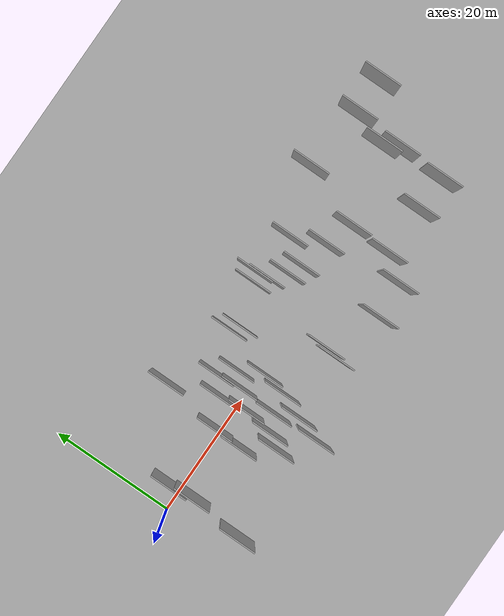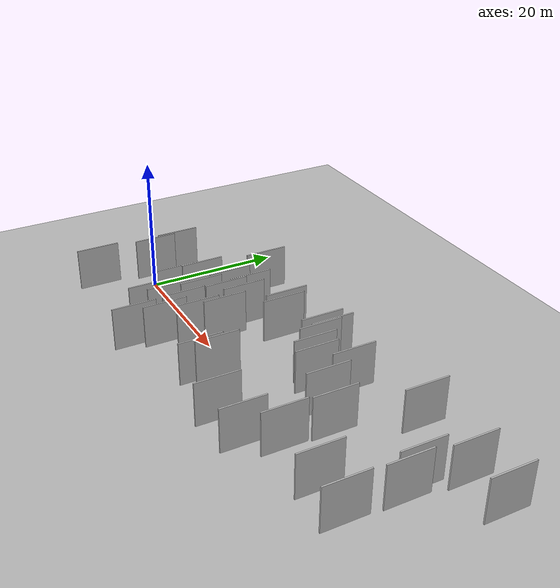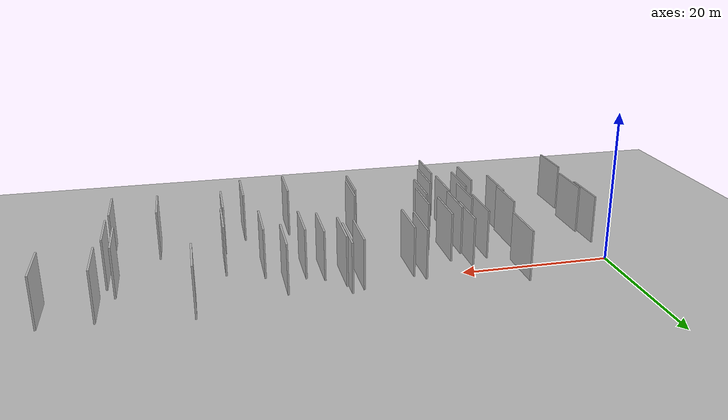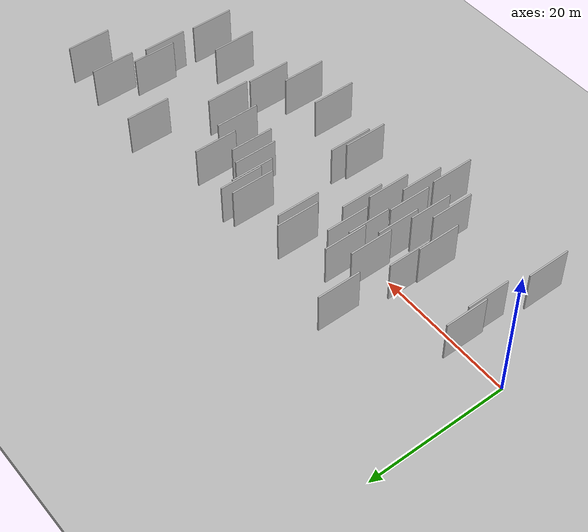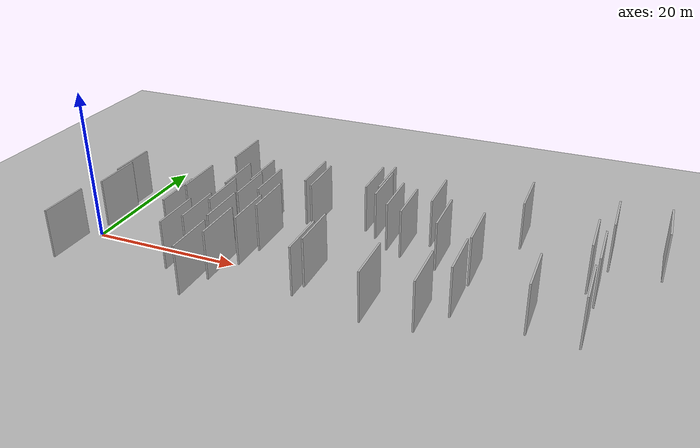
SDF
<?xml version="1.0" encoding="utf-8"?>

<sdf version="1.6">

   <world name="default">

      <gui fullscreen="0">

         <camera name="user_camera">

            <pose>-15 0 4.57585 0 0 0</pose>

            <view_controller>orbit</view_controller>

         </camera>

      </gui>

      <scene>

         <sky>

           <clouds>

             <speed>12</speed>

           </clouds>

         </sky>

         <ambient>0.4 0.4 0.4 1</ambient>

         <background>0.7 0.7 0.7 1</background>

         <shadows>1</shadows>

      </scene>

      <gravity>0 0 -9.8066</gravity>

      <magnetic_field>6e-06 2.3e-05 -4.2e-05</magnetic_field>

      <physics default="0" name="default_physics" type="ode">

         <ode>

            <solver>

               <type>quick</type>

               <iters>10</iters>

               <sor>1.0</sor>

               <use_dynamic_moi_rescaling>0</use_dynamic_moi_rescaling>

            </solver>

            <constraints>

               <cfm>0</cfm>

               <erp>0.2</erp>

               <contact_max_correcting_vel>100</contact_max_correcting_vel>

               <contact_surface_layer>0.001</contact_surface_layer>

            </constraints>

         </ode>

         <max_step_size>0.004</max_step_size>

         <real_time_factor>1</real_time_factor>

         <real_time_update_rate>250</real_time_update_rate>

      </physics>

      <light name="sun" type="directional">

         <cast_shadows>1</cast_shadows>

         <pose>0 0 10 0 0 0</pose>

         <diffuse>0.8 0.8 0.8 1</diffuse>

         <specular>0.2 0.2 0.2 1</specular>

         <attenuation>

            <range>1000</range>

            <constant>0.9</constant>

            <linear>0.01</linear>

            <quadratic>0.001</quadratic>

         </attenuation>

         <direction>-0.5 0.1 -0.9</direction>

      </light>

      <include>

         <name>ground_plane_1</name>

         <uri>model://HANNAS_ground_plane</uri>

         <pose>0 0 0  0 0 0</pose>

      </include>

      <include>

         <name>ground_plane_2</name>

         <uri>model://HANNAS_ground_plane</uri>

         <pose>100 0 0  0 0 0</pose>

      </include>

      <model name="HANNAS_wall_1">

         <static>1</static>

         <pose frame="">15.1098 -2.8193 5.0 0.000000 0.000000 1.570796</pose>

         <link name="link">

            <pose frame="">0 0 3.00 0 0 0</pose>

            <collision name="collision">

               <geometry>

                  <box>

                     <size>6.00 0.2 6.00</size>

                  </box>

               </geometry>

               <max_contacts>10</max_contacts>

               <surface>

                  <contact>

                     <ode/>

                  </contact>

                  <bounce/>

                  <friction>

                     <torsional>

                        <ode/>

                     </torsional>

                     <ode/>

                  </friction>

               </surface>

            </collision>

            <visual name="visual">

               <cast_shadows>0</cast_shadows>

               <geometry>

                  <box>

                     <size>6.00 0.2 6.00</size>

                  </box>

               </geometry>

               <material>

                  <script>

                     <uri>model://HANNAS_wall/materials/scripts</uri>

                     <uri>model://HANNAS_wall/materials/textures</uri>

                     <name>vrc/HANNAS_wall</name>

                  </script>

               </material>

            </visual>

            <self_collide>0</self_collide>

            <enable_wind>0</enable_wind>

            <kinematic>0</kinematic>

         </link>

      </model>

      <model name="HANNAS_wall_2">

         <static>1</static>

         <pose frame="">36.8971 9.5038 5.0 0.000000 0.000000 1.570796</pose>

         <link name="link">

            <pose frame="">0 0 3.00 0 0 0</pose>

            <collision name="collision">

               <geometry>

                  <box>

                     <size>6.00 0.2 6.00</size>

                  </box>

               </geometry>

               <max_contacts>10</max_contacts>

               <surface>

                  <contact>

                     <ode/>

                  </contact>

                  <bounce/>

                  <friction>

                     <torsional>

                        <ode/>

                     </torsional>

                     <ode/>

                  </friction>

               </surface>

            </collision>

            <visual name="visual">

               <cast_shadows>0</cast_shadows>

               <geometry>

                  <box>

                     <size>6.00 0.2 6.00</size>

                  </box>

               </geometry>

               <material>

                  <script>

                     <uri>model://HANNAS_wall/materials/scripts</uri>

                     <uri>model://HANNAS_wall/materials/textures</uri>

                     <name>vrc/HANNAS_wall</name>

                  </script>

               </material>

            </visual>

            <self_collide>0</self_collide>

            <enable_wind>0</enable_wind>

            <kinematic>0</kinematic>

         </link>

      </model>

      <model name="HANNAS_wall_3">

         <static>1</static>

         <pose frame="">22.0688 1.8951 5.0 0.000000 0.000000 1.570796</pose>

         <link name="link">

            <pose frame="">0 0 3.00 0 0 0</pose>

            <collision name="collision">

               <geometry>

                  <box>

                     <size>6.00 0.2 6.00</size>

                  </box>

               </geometry>

               <max_contacts>10</max_contacts>

               <surface>

                  <contact>

                     <ode/>

                  </contact>

                  <bounce/>

                  <friction>

                     <torsional>

                        <ode/>

                     </torsional>

                     <ode/>

                  </friction>

               </surface>

            </collision>

            <visual name="visual">

               <cast_shadows>0</cast_shadows>

               <geometry>

                  <box>

                     <size>6.00 0.2 6.00</size>

                  </box>

               </geometry>

               <material>

                  <script>

                     <uri>model://HANNAS_wall/materials/scripts</uri>

                     <uri>model://HANNAS_wall/materials/textures</uri>

                     <name>vrc/HANNAS_wall</name>

                  </script>

               </material>

            </visual>

            <self_collide>0</self_collide>

            <enable_wind>0</enable_wind>

            <kinematic>0</kinematic>

         </link>

      </model>

      <model name="HANNAS_wall_4">

         <static>1</static>

         <pose frame="">69.5111 10.4103 5.0 0.000000 0.000000 1.570796</pose>

         <link name="link">

            <pose frame="">0 0 3.00 0 0 0</pose>

            <collision name="collision">

               <geometry>

                  <box>

                     <size>6.00 0.2 6.00</size>

                  </box>

               </geometry>

               <max_contacts>10</max_contacts>

               <surface>

                  <contact>

                     <ode/>

                  </contact>

                  <bounce/>

                  <friction>

                     <torsional>

                        <ode/>

                     </torsional>

                     <ode/>

                  </friction>

               </surface>

            </collision>

            <visual name="visual">

               <cast_shadows>0</cast_shadows>

               <geometry>

                  <box>

                     <size>6.00 0.2 6.00</size>

                  </box>

               </geometry>

               <material>

                  <script>

                     <uri>model://HANNAS_wall/materials/scripts</uri>

                     <uri>model://HANNAS_wall/materials/textures</uri>

                     <name>vrc/HANNAS_wall</name>

                  </script>

               </material>

            </visual>

            <self_collide>0</self_collide>

            <enable_wind>0</enable_wind>

            <kinematic>0</kinematic>

         </link>

      </model>

      <model name="HANNAS_wall_5">

         <static>1</static>

         <pose frame="">39.2973 5.6026 5.0 0.000000 0.000000 1.570796</pose>

         <link name="link">

            <pose frame="">0 0 3.00 0 0 0</pose>

            <collision name="collision">

               <geometry>

                  <box>

                     <size>6.00 0.2 6.00</size>

                  </box>

               </geometry>

               <max_contacts>10</max_contacts>

               <surface>

                  <contact>

                     <ode/>

                  </contact>

                  <bounce/>

                  <friction>

                     <torsional>

                        <ode/>

                     </torsional>

                     <ode/>

                  </friction>

               </surface>

            </collision>

            <visual name="visual">

               <cast_shadows>0</cast_shadows>

               <geometry>

                  <box>

                     <size>6.00 0.2 6.00</size>

                  </box>

               </geometry>

               <material>

                  <script>

                     <uri>model://HANNAS_wall/materials/scripts</uri>

                     <uri>model://HANNAS_wall/materials/textures</uri>

                     <name>vrc/HANNAS_wall</name>

                  </script>

               </material>

            </visual>

            <self_collide>0</self_collide>

            <enable_wind>0</enable_wind>

            <kinematic>0</kinematic>

         </link>

      </model>

      <model name="HANNAS_wall_6">

         <static>1</static>

         <pose frame="">63.8105 10.3635 5.0 0.000000 0.000000 1.570796</pose>

         <link name="link">

            <pose frame="">0 0 3.00 0 0 0</pose>

            <collision name="collision">

               <geometry>

                  <box>

                     <size>6.00 0.2 6.00</size>

                  </box>

               </geometry>

               <max_contacts>10</max_contacts>

               <surface>

                  <contact>

                     <ode/>

                  </contact>

                  <bounce/>

                  <friction>

                     <torsional>

                        <ode/>

                     </torsional>

                     <ode/>

                  </friction>

               </surface>

            </collision>

            <visual name="visual">

               <cast_shadows>0</cast_shadows>

               <geometry>

                  <box>

                     <size>6.00 0.2 6.00</size>

                  </box>

               </geometry>

               <material>

                  <script>

                     <uri>model://HANNAS_wall/materials/scripts</uri>

                     <uri>model://HANNAS_wall/materials/textures</uri>

                     <name>vrc/HANNAS_wall</name>

                  </script>

               </material>

            </visual>

            <self_collide>0</self_collide>

            <enable_wind>0</enable_wind>

            <kinematic>0</kinematic>

         </link>

      </model>

      <model name="HANNAS_wall_7">

         <static>1</static>

         <pose frame="">21.7948 5.6717 5.0 0.000000 0.000000 1.570796</pose>

         <link name="link">

            <pose frame="">0 0 3.00 0 0 0</pose>

            <collision name="collision">

               <geometry>

                  <box>

                     <size>6.00 0.2 6.00</size>

                  </box>

               </geometry>

               <max_contacts>10</max_contacts>

               <surface>

                  <contact>

                     <ode/>

                  </contact>

                  <bounce/>

                  <friction>

                     <torsional>

                        <ode/>

                     </torsional>

                     <ode/>

                  </friction>

               </surface>

            </collision>

            <visual name="visual">

               <cast_shadows>0</cast_shadows>

               <geometry>

                  <box>

                     <size>6.00 0.2 6.00</size>

                  </box>

               </geometry>

               <material>

                  <script>

                     <uri>model://HANNAS_wall/materials/scripts</uri>

                     <uri>model://HANNAS_wall/materials/textures</uri>

                     <name>vrc/HANNAS_wall</name>

                  </script>

               </material>

            </visual>

            <self_collide>0</self_collide>

            <enable_wind>0</enable_wind>

            <kinematic>0</kinematic>

         </link>

      </model>

      <model name="HANNAS_wall_8">

         <static>1</static>

         <pose frame="">29.2402 6.7850 5.0 0.000000 0.000000 1.570796</pose>

         <link name="link">

            <pose frame="">0 0 3.00 0 0 0</pose>

            <collision name="collision">

               <geometry>

                  <box>

                     <size>6.00 0.2 6.00</size>

                  </box>

               </geometry>

               <max_contacts>10</max_contacts>

               <surface>

                  <contact>

                     <ode/>

                  </contact>

                  <bounce/>

                  <friction>

                     <torsional>

                        <ode/>

                     </torsional>

                     <ode/>

                  </friction>

               </surface>

            </collision>

            <visual name="visual">

               <cast_shadows>0</cast_shadows>

               <geometry>

                  <box>

                     <size>6.00 0.2 6.00</size>

                  </box>

               </geometry>

               <material>

                  <script>

                     <uri>model://HANNAS_wall/materials/scripts</uri>

                     <uri>model://HANNAS_wall/materials/textures</uri>

                     <name>vrc/HANNAS_wall</name>

                  </script>

               </material>

            </visual>

            <self_collide>0</self_collide>

            <enable_wind>0</enable_wind>

            <kinematic>0</kinematic>

         </link>

      </model>

      <model name="HANNAS_wall_9">

         <static>1</static>

         <pose frame="">4.4301 -9.9603 5.0 0.000000 0.000000 1.570796</pose>

         <link name="link">

            <pose frame="">0 0 3.00 0 0 0</pose>

            <collision name="collision">

               <geometry>

                  <box>

                     <size>6.00 0.2 6.00</size>

                  </box>

               </geometry>

               <max_contacts>10</max_contacts>

               <surface>

                  <contact>

                     <ode/>

                  </contact>

                  <bounce/>

                  <friction>

                     <torsional>

                        <ode/>

                     </torsional>

                     <ode/>

                  </friction>

               </surface>

            </collision>

            <visual name="visual">

               <cast_shadows>0</cast_shadows>

               <geometry>

                  <box>

                     <size>6.00 0.2 6.00</size>

                  </box>

               </geometry>

               <material>

                  <script>

                     <uri>model://HANNAS_wall/materials/scripts</uri>

                     <uri>model://HANNAS_wall/materials/textures</uri>

                     <name>vrc/HANNAS_wall</name>

                  </script>

               </material>

            </visual>

            <self_collide>0</self_collide>

            <enable_wind>0</enable_wind>

            <kinematic>0</kinematic>

         </link>

      </model>

      <model name="HANNAS_wall_10">

         <static>1</static>

         <pose frame="">19.2642 -5.2666 5.0 0.000000 0.000000 1.570796</pose>

         <link name="link">

            <pose frame="">0 0 3.00 0 0 0</pose>

            <collision name="collision">

               <geometry>

                  <box>

                     <size>6.00 0.2 6.00</size>

                  </box>

               </geometry>

               <max_contacts>10</max_contacts>

               <surface>

                  <contact>

                     <ode/>

                  </contact>

                  <bounce/>

                  <friction>

                     <torsional>

                        <ode/>

                     </torsional>

                     <ode/>

                  </friction>

               </surface>

            </collision>

            <visual name="visual">

               <cast_shadows>0</cast_shadows>

               <geometry>

                  <box>

                     <size>6.00 0.2 6.00</size>

                  </box>

               </geometry>

               <material>

                  <script>

                     <uri>model://HANNAS_wall/materials/scripts</uri>

                     <uri>model://HANNAS_wall/materials/textures</uri>

                     <name>vrc/HANNAS_wall</name>

                  </script>

               </material>

            </visual>

            <self_collide>0</self_collide>

            <enable_wind>0</enable_wind>

            <kinematic>0</kinematic>

         </link>

      </model>

      <model name="HANNAS_wall_11">

         <static>1</static>

         <pose frame="">21.7826 -4.1473 5.0 0.000000 0.000000 1.570796</pose>

         <link name="link">

            <pose frame="">0 0 3.00 0 0 0</pose>

            <collision name="collision">

               <geometry>

                  <box>

                     <size>6.00 0.2 6.00</size>

                  </box>

               </geometry>

               <max_contacts>10</max_contacts>

               <surface>

                  <contact>

                     <ode/>

                  </contact>

                  <bounce/>

                  <friction>

                     <torsional>

                        <ode/>

                     </torsional>

                     <ode/>

                  </friction>

               </surface>

            </collision>

            <visual name="visual">

               <cast_shadows>0</cast_shadows>

               <geometry>

                  <box>

                     <size>6.00 0.2 6.00</size>

                  </box>

               </geometry>

               <material>

                  <script>

                     <uri>model://HANNAS_wall/materials/scripts</uri>

                     <uri>model://HANNAS_wall/materials/textures</uri>

                     <name>vrc/HANNAS_wall</name>

                  </script>

               </material>

            </visual>

            <self_collide>0</self_collide>

            <enable_wind>0</enable_wind>

            <kinematic>0</kinematic>

         </link>

      </model>

      <model name="HANNAS_wall_12">

         <static>1</static>

         <pose frame="">49.7910 -4.4299 5.0 0.000000 0.000000 1.570796</pose>

         <link name="link">

            <pose frame="">0 0 3.00 0 0 0</pose>

            <collision name="collision">

               <geometry>

                  <box>

                     <size>6.00 0.2 6.00</size>

                  </box>

               </geometry>

               <max_contacts>10</max_contacts>

               <surface>

                  <contact>

                     <ode/>

                  </contact>

                  <bounce/>

                  <friction>

                     <torsional>

                        <ode/>

                     </torsional>

                     <ode/>

                  </friction>

               </surface>

            </collision>

            <visual name="visual">

               <cast_shadows>0</cast_shadows>

               <geometry>

                  <box>

                     <size>6.00 0.2 6.00</size>

                  </box>

               </geometry>

               <material>

                  <script>

                     <uri>model://HANNAS_wall/materials/scripts</uri>

                     <uri>model://HANNAS_wall/materials/textures</uri>

                     <name>vrc/HANNAS_wall</name>

                  </script>

               </material>

            </visual>

            <self_collide>0</self_collide>

            <enable_wind>0</enable_wind>

            <kinematic>0</kinematic>

         </link>

      </model>

      <model name="HANNAS_wall_13">

         <static>1</static>

         <pose frame="">63.1329 2.6508 5.0 0.000000 0.000000 1.570796</pose>

         <link name="link">

            <pose frame="">0 0 3.00 0 0 0</pose>

            <collision name="collision">

               <geometry>

                  <box>

                     <size>6.00 0.2 6.00</size>

                  </box>

               </geometry>

               <max_contacts>10</max_contacts>

               <surface>

                  <contact>

                     <ode/>

                  </contact>

                  <bounce/>

                  <friction>

                     <torsional>

                        <ode/>

                     </torsional>

                     <ode/>

                  </friction>

               </surface>

            </collision>

            <visual name="visual">

               <cast_shadows>0</cast_shadows>

               <geometry>

                  <box>

                     <size>6.00 0.2 6.00</size>

                  </box>

               </geometry>

               <material>

                  <script>

                     <uri>model://HANNAS_wall/materials/scripts</uri>

                     <uri>model://HANNAS_wall/materials/textures</uri>

                     <name>vrc/HANNAS_wall</name>

                  </script>

               </material>

            </visual>

            <self_collide>0</self_collide>

            <enable_wind>0</enable_wind>

            <kinematic>0</kinematic>

         </link>

      </model>

      <model name="HANNAS_wall_14">

         <static>1</static>

         <pose frame="">16.7649 10.7380 5.0 0.000000 0.000000 1.570796</pose>

         <link name="link">

            <pose frame="">0 0 3.00 0 0 0</pose>

            <collision name="collision">

               <geometry>

                  <box>

                     <size>6.00 0.2 6.00</size>

                  </box>

               </geometry>

               <max_contacts>10</max_contacts>

               <surface>

                  <contact>

                     <ode/>

                  </contact>

                  <bounce/>

                  <friction>

                     <torsional>

                        <ode/>

                     </torsional>

                     <ode/>

                  </friction>

               </surface>

            </collision>

            <visual name="visual">

               <cast_shadows>0</cast_shadows>

               <geometry>

                  <box>

                     <size>6.00 0.2 6.00</size>

                  </box>

               </geometry>

               <material>

                  <script>

                     <uri>model://HANNAS_wall/materials/scripts</uri>

                     <uri>model://HANNAS_wall/materials/textures</uri>

                     <name>vrc/HANNAS_wall</name>

                  </script>

               </material>

            </visual>

            <self_collide>0</self_collide>

            <enable_wind>0</enable_wind>

            <kinematic>0</kinematic>

         </link>

      </model>

      <model name="HANNAS_wall_15">

         <static>1</static>

         <pose frame="">41.5558 -8.6077 5.0 0.000000 0.000000 1.570796</pose>

         <link name="link">

            <pose frame="">0 0 3.00 0 0 0</pose>

            <collision name="collision">

               <geometry>

                  <box>

                     <size>6.00 0.2 6.00</size>

                  </box>

               </geometry>

               <max_contacts>10</max_contacts>

               <surface>

                  <contact>

                     <ode/>

                  </contact>

                  <bounce/>

                  <friction>

                     <torsional>

                        <ode/>

                     </torsional>

                     <ode/>

                  </friction>

               </surface>

            </collision>

            <visual name="visual">

               <cast_shadows>0</cast_shadows>

               <geometry>

                  <box>

                     <size>6.00 0.2 6.00</size>

                  </box>

               </geometry>

               <material>

                  <script>

                     <uri>model://HANNAS_wall/materials/scripts</uri>

                     <uri>model://HANNAS_wall/materials/textures</uri>

                     <name>vrc/HANNAS_wall</name>

                  </script>

               </material>

            </visual>

            <self_collide>0</self_collide>

            <enable_wind>0</enable_wind>

            <kinematic>0</kinematic>

         </link>

      </model>

      <model name="HANNAS_wall_16">

         <static>1</static>

         <pose frame="">24.8959 -3.5374 5.0 0.000000 0.000000 1.570796</pose>

         <link name="link">

            <pose frame="">0 0 3.00 0 0 0</pose>

            <collision name="collision">

               <geometry>

                  <box>

                     <size>6.00 0.2 6.00</size>

                  </box>

               </geometry>

               <max_contacts>10</max_contacts>

               <surface>

                  <contact>

                     <ode/>

                  </contact>

                  <bounce/>

                  <friction>

                     <torsional>

                        <ode/>

                     </torsional>

                     <ode/>

                  </friction>

               </surface>

            </collision>

            <visual name="visual">

               <cast_shadows>0</cast_shadows>

               <geometry>

                  <box>

                     <size>6.00 0.2 6.00</size>

                  </box>

               </geometry>

               <material>

                  <script>

                     <uri>model://HANNAS_wall/materials/scripts</uri>

                     <uri>model://HANNAS_wall/materials/textures</uri>

                     <name>vrc/HANNAS_wall</name>

                  </script>

               </material>

            </visual>

            <self_collide>0</self_collide>

            <enable_wind>0</enable_wind>

            <kinematic>0</kinematic>

         </link>

      </model>

      <model name="HANNAS_wall_17">

         <static>1</static>

         <pose frame="">41.2965 4.6494 5.0 0.000000 0.000000 1.570796</pose>

         <link name="link">

            <pose frame="">0 0 3.00 0 0 0</pose>

            <collision name="collision">

               <geometry>

                  <box>

                     <size>6.00 0.2 6.00</size>

                  </box>

               </geometry>

               <max_contacts>10</max_contacts>

               <surface>

                  <contact>

                     <ode/>

                  </contact>

                  <bounce/>

                  <friction>

                     <torsional>

                        <ode/>

                     </torsional>

                     <ode/>

                  </friction>

               </surface>

            </collision>

            <visual name="visual">

               <cast_shadows>0</cast_shadows>

               <geometry>

                  <box>

                     <size>6.00 0.2 6.00</size>

                  </box>

               </geometry>

               <material>

                  <script>

                     <uri>model://HANNAS_wall/materials/scripts</uri>

                     <uri>model://HANNAS_wall/materials/textures</uri>

                     <name>vrc/HANNAS_wall</name>

                  </script>

               </material>

            </visual>

            <self_collide>0</self_collide>

            <enable_wind>0</enable_wind>

            <kinematic>0</kinematic>

         </link>

      </model>

      <model name="HANNAS_wall_18">

         <static>1</static>

         <pose frame="">33.7202 -4.9084 5.0 0.000000 0.000000 1.570796</pose>

         <link name="link">

            <pose frame="">0 0 3.00 0 0 0</pose>

            <collision name="collision">

               <geometry>

                  <box>

                     <size>6.00 0.2 6.00</size>

                  </box>

               </geometry>

               <max_contacts>10</max_contacts>

               <surface>

                  <contact>

                     <ode/>

                  </contact>

                  <bounce/>

                  <friction>

                     <torsional>

                        <ode/>

                     </torsional>

                     <ode/>

                  </friction>

               </surface>

            </collision>

            <visual name="visual">

               <cast_shadows>0</cast_shadows>

               <geometry>

                  <box>

                     <size>6.00 0.2 6.00</size>

                  </box>

               </geometry>

               <material>

                  <script>

                     <uri>model://HANNAS_wall/materials/scripts</uri>

                     <uri>model://HANNAS_wall/materials/textures</uri>

                     <name>vrc/HANNAS_wall</name>

                  </script>

               </material>

            </visual>

            <self_collide>0</self_collide>

            <enable_wind>0</enable_wind>

            <kinematic>0</kinematic>

         </link>

      </model>

      <model name="HANNAS_wall_19">

         <static>1</static>

         <pose frame="">53.7269 11.6248 5.0 0.000000 0.000000 1.570796</pose>

         <link name="link">

            <pose frame="">0 0 3.00 0 0 0</pose>

            <collision name="collision">

               <geometry>

                  <box>

                     <size>6.00 0.2 6.00</size>

                  </box>

               </geometry>

               <max_contacts>10</max_contacts>

               <surface>

                  <contact>

                     <ode/>

                  </contact>

                  <bounce/>

                  <friction>

                     <torsional>

                        <ode/>

                     </torsional>

                     <ode/>

                  </friction>

               </surface>

            </collision>

            <visual name="visual">

               <cast_shadows>0</cast_shadows>

               <geometry>

                  <box>

                     <size>6.00 0.2 6.00</size>

                  </box>

               </geometry>

               <material>

                  <script>

                     <uri>model://HANNAS_wall/materials/scripts</uri>

                     <uri>model://HANNAS_wall/materials/textures</uri>

                     <name>vrc/HANNAS_wall</name>

                  </script>

               </material>

            </visual>

            <self_collide>0</self_collide>

            <enable_wind>0</enable_wind>

            <kinematic>0</kinematic>

         </link>

      </model>

      <model name="HANNAS_wall_20">

         <static>1</static>

         <pose frame="">33.2412 -6.9048 5.0 0.000000 0.000000 1.570796</pose>

         <link name="link">

            <pose frame="">0 0 3.00 0 0 0</pose>

            <collision name="collision">

               <geometry>

                  <box>

                     <size>6.00 0.2 6.00</size>

                  </box>

               </geometry>

               <max_contacts>10</max_contacts>

               <surface>

                  <contact>

                     <ode/>

                  </contact>

                  <bounce/>

                  <friction>

                     <torsional>

                        <ode/>

                     </torsional>

                     <ode/>

                  </friction>

               </surface>

            </collision>

            <visual name="visual">

               <cast_shadows>0</cast_shadows>

               <geometry>

                  <box>

                     <size>6.00 0.2 6.00</size>

                  </box>

               </geometry>

               <material>

                  <script>

                     <uri>model://HANNAS_wall/materials/scripts</uri>

                     <uri>model://HANNAS_wall/materials/textures</uri>

                     <name>vrc/HANNAS_wall</name>

                  </script>

               </material>

            </visual>

            <self_collide>0</self_collide>

            <enable_wind>0</enable_wind>

            <kinematic>0</kinematic>

         </link>

      </model>

      <model name="HANNAS_wall_21">

         <static>1</static>

         <pose frame="">47.1240 -8.1379 5.0 0.000000 0.000000 1.570796</pose>

         <link name="link">

            <pose frame="">0 0 3.00 0 0 0</pose>

            <collision name="collision">

               <geometry>

                  <box>

                     <size>6.00 0.2 6.00</size>

                  </box>

               </geometry>

               <max_contacts>10</max_contacts>

               <surface>

                  <contact>

                     <ode/>

                  </contact>

                  <bounce/>

                  <friction>

                     <torsional>

                        <ode/>

                     </torsional>

                     <ode/>

                  </friction>

               </surface>

            </collision>

            <visual name="visual">

               <cast_shadows>0</cast_shadows>

               <geometry>

                  <box>

                     <size>6.00 0.2 6.00</size>

                  </box>

               </geometry>

               <material>

                  <script>

                     <uri>model://HANNAS_wall/materials/scripts</uri>

                     <uri>model://HANNAS_wall/materials/textures</uri>

                     <name>vrc/HANNAS_wall</name>

                  </script>

               </material>

            </visual>

            <self_collide>0</self_collide>

            <enable_wind>0</enable_wind>

            <kinematic>0</kinematic>

         </link>

      </model>

      <model name="HANNAS_wall_22">

         <static>1</static>

         <pose frame="">50.0773 1.8657 5.0 0.000000 0.000000 1.570796</pose>

         <link name="link">

            <pose frame="">0 0 3.00 0 0 0</pose>

            <collision name="collision">

               <geometry>

                  <box>

                     <size>6.00 0.2 6.00</size>

                  </box>

               </geometry>

               <max_contacts>10</max_contacts>

               <surface>

                  <contact>

                     <ode/>

                  </contact>

                  <bounce/>

                  <friction>

                     <torsional>

                        <ode/>

                     </torsional>

                     <ode/>

                  </friction>

               </surface>

            </collision>

            <visual name="visual">

               <cast_shadows>0</cast_shadows>

               <geometry>

                  <box>

                     <size>6.00 0.2 6.00</size>

                  </box>

               </geometry>

               <material>

                  <script>

                     <uri>model://HANNAS_wall/materials/scripts</uri>

                     <uri>model://HANNAS_wall/materials/textures</uri>

                     <name>vrc/HANNAS_wall</name>

                  </script>

               </material>

            </visual>

            <self_collide>0</self_collide>

            <enable_wind>0</enable_wind>

            <kinematic>0</kinematic>

         </link>

      </model>

      <model name="HANNAS_wall_23">

         <static>1</static>

         <pose frame="">22.0500 -11.1793 5.0 0.000000 0.000000 1.570796</pose>

         <link name="link">

            <pose frame="">0 0 3.00 0 0 0</pose>

            <collision name="collision">

               <geometry>

                  <box>

                     <size>6.00 0.2 6.00</size>

                  </box>

               </geometry>

               <max_contacts>10</max_contacts>

               <surface>

                  <contact>

                     <ode/>

                  </contact>

                  <bounce/>

                  <friction>

                     <torsional>

                        <ode/>

                     </torsional>

                     <ode/>

                  </friction>

               </surface>

            </collision>

            <visual name="visual">

               <cast_shadows>0</cast_shadows>

               <geometry>

                  <box>

                     <size>6.00 0.2 6.00</size>

                  </box>

               </geometry>

               <material>

                  <script>

                     <uri>model://HANNAS_wall/materials/scripts</uri>

                     <uri>model://HANNAS_wall/materials/textures</uri>

                     <name>vrc/HANNAS_wall</name>

                  </script>

               </material>

            </visual>

            <self_collide>0</self_collide>

            <enable_wind>0</enable_wind>

            <kinematic>0</kinematic>

         </link>

      </model>

      <model name="HANNAS_wall_24">

         <static>1</static>

         <pose frame="">19.4214 3.7676 5.0 0.000000 0.000000 1.570796</pose>

         <link name="link">

            <pose frame="">0 0 3.00 0 0 0</pose>

            <collision name="collision">

               <geometry>

                  <box>

                     <size>6.00 0.2 6.00</size>

                  </box>

               </geometry>

               <max_contacts>10</max_contacts>

               <surface>

                  <contact>

                     <ode/>

                  </contact>

                  <bounce/>

                  <friction>

                     <torsional>

                        <ode/>

                     </torsional>

                     <ode/>

                  </friction>

               </surface>

            </collision>

            <visual name="visual">

               <cast_shadows>0</cast_shadows>

               <geometry>

                  <box>

                     <size>6.00 0.2 6.00</size>

                  </box>

               </geometry>

               <material>

                  <script>

                     <uri>model://HANNAS_wall/materials/scripts</uri>

                     <uri>model://HANNAS_wall/materials/textures</uri>

                     <name>vrc/HANNAS_wall</name>

                  </script>

               </material>

            </visual>

            <self_collide>0</self_collide>

            <enable_wind>0</enable_wind>

            <kinematic>0</kinematic>

         </link>

      </model>

      <model name="HANNAS_wall_25">

         <static>1</static>

         <pose frame="">19.9188 -0.7784 5.0 0.000000 0.000000 1.570796</pose>

         <link name="link">

            <pose frame="">0 0 3.00 0 0 0</pose>

            <collision name="collision">

               <geometry>

                  <box>

                     <size>6.00 0.2 6.00</size>

                  </box>

               </geometry>

               <max_contacts>10</max_contacts>

               <surface>

                  <contact>

                     <ode/>

                  </contact>

                  <bounce/>

                  <friction>

                     <torsional>

                        <ode/>

                     </torsional>

                     <ode/>

                  </friction>

               </surface>

            </collision>

            <visual name="visual">

               <cast_shadows>0</cast_shadows>

               <geometry>

                  <box>

                     <size>6.00 0.2 6.00</size>

                  </box>

               </geometry>

               <material>

                  <script>

                     <uri>model://HANNAS_wall/materials/scripts</uri>

                     <uri>model://HANNAS_wall/materials/textures</uri>

                     <name>vrc/HANNAS_wall</name>

                  </script>

               </material>

            </visual>

            <self_collide>0</self_collide>

            <enable_wind>0</enable_wind>

            <kinematic>0</kinematic>

         </link>

      </model>

      <model name="HANNAS_wall_26">

         <static>1</static>

         <pose frame="">57.4711 -4.5236 5.0 0.000000 0.000000 1.570796</pose>

         <link name="link">

            <pose frame="">0 0 3.00 0 0 0</pose>

            <collision name="collision">

               <geometry>

                  <box>

                     <size>6.00 0.2 6.00</size>

                  </box>

               </geometry>

               <max_contacts>10</max_contacts>

               <surface>

                  <contact>

                     <ode/>

                  </contact>

                  <bounce/>

                  <friction>

                     <torsional>

                        <ode/>

                     </torsional>

                     <ode/>

                  </friction>

               </surface>

            </collision>

            <visual name="visual">

               <cast_shadows>0</cast_shadows>

               <geometry>

                  <box>

                     <size>6.00 0.2 6.00</size>

                  </box>

               </geometry>

               <material>

                  <script>

                     <uri>model://HANNAS_wall/materials/scripts</uri>

                     <uri>model://HANNAS_wall/materials/textures</uri>

                     <name>vrc/HANNAS_wall</name>

                  </script>

               </material>

            </visual>

            <self_collide>0</self_collide>

            <enable_wind>0</enable_wind>

            <kinematic>0</kinematic>

         </link>

      </model>

      <model name="HANNAS_wall_27">

         <static>1</static>

         <pose frame="">15.3381 1.4381 5.0 0.000000 0.000000 1.570796</pose>

         <link name="link">

            <pose frame="">0 0 3.00 0 0 0</pose>

            <collision name="collision">

               <geometry>

                  <box>

                     <size>6.00 0.2 6.00</size>

                  </box>

               </geometry>

               <max_contacts>10</max_contacts>

               <surface>

                  <contact>

                     <ode/>

                  </contact>

                  <bounce/>

                  <friction>

                     <torsional>

                        <ode/>

                     </torsional>

                     <ode/>

                  </friction>

               </surface>

            </collision>

            <visual name="visual">

               <cast_shadows>0</cast_shadows>

               <geometry>

                  <box>

                     <size>6.00 0.2 6.00</size>

                  </box>

               </geometry>

               <material>

                  <script>

                     <uri>model://HANNAS_wall/materials/scripts</uri>

                     <uri>model://HANNAS_wall/materials/textures</uri>

                     <name>vrc/HANNAS_wall</name>

                  </script>

               </material>

            </visual>

            <self_collide>0</self_collide>

            <enable_wind>0</enable_wind>

            <kinematic>0</kinematic>

         </link>

      </model>

      <model name="HANNAS_wall_28">

         <static>1</static>

         <pose frame="">17.7762 -7.3163 5.0 0.000000 0.000000 1.570796</pose>

         <link name="link">

            <pose frame="">0 0 3.00 0 0 0</pose>

            <collision name="collision">

               <geometry>

                  <box>

                     <size>6.00 0.2 6.00</size>

                  </box>

               </geometry>

               <max_contacts>10</max_contacts>

               <surface>

                  <contact>

                     <ode/>

                  </contact>

                  <bounce/>

                  <friction>

                     <torsional>

                        <ode/>

                     </torsional>

                     <ode/>

                  </friction>

               </surface>

            </collision>

            <visual name="visual">

               <cast_shadows>0</cast_shadows>

               <geometry>

                  <box>

                     <size>6.00 0.2 6.00</size>

                  </box>

               </geometry>

               <material>

                  <script>

                     <uri>model://HANNAS_wall/materials/scripts</uri>

                     <uri>model://HANNAS_wall/materials/textures</uri>

                     <name>vrc/HANNAS_wall</name>

                  </script>

               </material>

            </visual>

            <self_collide>0</self_collide>

            <enable_wind>0</enable_wind>

            <kinematic>0</kinematic>

         </link>

      </model>

      <model name="HANNAS_wall_29">

         <static>1</static>

         <pose frame="">23.8655 3.6667 5.0 0.000000 0.000000 1.570796</pose>

         <link name="link">

            <pose frame="">0 0 3.00 0 0 0</pose>

            <collision name="collision">

               <geometry>

                  <box>

                     <size>6.00 0.2 6.00</size>

                  </box>

               </geometry>

               <max_contacts>10</max_contacts>

               <surface>

                  <contact>

                     <ode/>

                  </contact>

                  <bounce/>

                  <friction>

                     <torsional>

                        <ode/>

                     </torsional>

                     <ode/>

                  </friction>

               </surface>

            </collision>

            <visual name="visual">

               <cast_shadows>0</cast_shadows>

               <geometry>

                  <box>

                     <size>6.00 0.2 6.00</size>

                  </box>

               </geometry>

               <material>

                  <script>

                     <uri>model://HANNAS_wall/materials/scripts</uri>

                     <uri>model://HANNAS_wall/materials/textures</uri>

                     <name>vrc/HANNAS_wall</name>

                  </script>

               </material>

            </visual>

            <self_collide>0</self_collide>

            <enable_wind>0</enable_wind>

            <kinematic>0</kinematic>

         </link>

      </model>

      <model name="HANNAS_wall_30">

         <static>1</static>

         <pose frame="">28.0412 7.8098 5.0 0.000000 0.000000 1.570796</pose>

         <link name="link">

            <pose frame="">0 0 3.00 0 0 0</pose>

            <collision name="collision">

               <geometry>

                  <box>

                     <size>6.00 0.2 6.00</size>

                  </box>

               </geometry>

               <max_contacts>10</max_contacts>

               <surface>

                  <contact>

                     <ode/>

                  </contact>

                  <bounce/>

                  <friction>

                     <torsional>

                        <ode/>

                     </torsional>

                     <ode/>

                  </friction>

               </surface>

            </collision>

            <visual name="visual">

               <cast_shadows>0</cast_shadows>

               <geometry>

                  <box>

                     <size>6.00 0.2 6.00</size>

                  </box>

               </geometry>

               <material>

                  <script>

                     <uri>model://HANNAS_wall/materials/scripts</uri>

                     <uri>model://HANNAS_wall/materials/textures</uri>

                     <name>vrc/HANNAS_wall</name>

                  </script>

               </material>

            </visual>

            <self_collide>0</self_collide>

            <enable_wind>0</enable_wind>

            <kinematic>0</kinematic>

         </link>

      </model>

      <model name="HANNAS_wall_31">

         <static>1</static>

         <pose frame="">35.4676 8.8557 5.0 0.000000 0.000000 1.570796</pose>

         <link name="link">

            <pose frame="">0 0 3.00 0 0 0</pose>

            <collision name="collision">

               <geometry>

                  <box>

                     <size>6.00 0.2 6.00</size>

                  </box>

               </geometry>

               <max_contacts>10</max_contacts>

               <surface>

                  <contact>

                     <ode/>

                  </contact>

                  <bounce/>

                  <friction>

                     <torsional>

                        <ode/>

                     </torsional>

                     <ode/>

                  </friction>

               </surface>

            </collision>

            <visual name="visual">

               <cast_shadows>0</cast_shadows>

               <geometry>

                  <box>

                     <size>6.00 0.2 6.00</size>

                  </box>

               </geometry>

               <material>

                  <script>

                     <uri>model://HANNAS_wall/materials/scripts</uri>

                     <uri>model://HANNAS_wall/materials/textures</uri>

                     <name>vrc/HANNAS_wall</name>

                  </script>

               </material>

            </visual>

            <self_collide>0</self_collide>

            <enable_wind>0</enable_wind>

            <kinematic>0</kinematic>

         </link>

      </model>

      <model name="HANNAS_wall_32">

         <static>1</static>

         <pose frame="">43.7911 8.3035 5.0 0.000000 0.000000 1.570796</pose>

         <link name="link">

            <pose frame="">0 0 3.00 0 0 0</pose>

            <collision name="collision">

               <geometry>

                  <box>

                     <size>6.00 0.2 6.00</size>

                  </box>

               </geometry>

               <max_contacts>10</max_contacts>

               <surface>

                  <contact>

                     <ode/>

                  </contact>

                  <bounce/>

                  <friction>

                     <torsional>

                        <ode/>

                     </torsional>

                     <ode/>

                  </friction>

               </surface>

            </collision>

            <visual name="visual">

               <cast_shadows>0</cast_shadows>

               <geometry>

                  <box>

                     <size>6.00 0.2 6.00</size>

                  </box>

               </geometry>

               <material>

                  <script>

                     <uri>model://HANNAS_wall/materials/scripts</uri>

                     <uri>model://HANNAS_wall/materials/textures</uri>

                     <name>vrc/HANNAS_wall</name>

                  </script>

               </material>

            </visual>

            <self_collide>0</self_collide>

            <enable_wind>0</enable_wind>

            <kinematic>0</kinematic>

         </link>

      </model>

      <model name="HANNAS_wall_33">

         <static>1</static>

         <pose frame="">5.4154 -1.5364 5.0 0.000000 0.000000 1.570796</pose>

         <link name="link">

            <pose frame="">0 0 3.00 0 0 0</pose>

            <collision name="collision">

               <geometry>

                  <box>

                     <size>6.00 0.2 6.00</size>

                  </box>

               </geometry>

               <max_contacts>10</max_contacts>

               <surface>

                  <contact>

                     <ode/>

                  </contact>

                  <bounce/>

                  <friction>

                     <torsional>

                        <ode/>

                     </torsional>

                     <ode/>

                  </friction>

               </surface>

            </collision>

            <visual name="visual">

               <cast_shadows>0</cast_shadows>

               <geometry>

                  <box>

                     <size>6.00 0.2 6.00</size>

                  </box>

               </geometry>

               <material>

                  <script>

                     <uri>model://HANNAS_wall/materials/scripts</uri>

                     <uri>model://HANNAS_wall/materials/textures</uri>

                     <name>vrc/HANNAS_wall</name>

                  </script>

               </material>

            </visual>

            <self_collide>0</self_collide>

            <enable_wind>0</enable_wind>

            <kinematic>0</kinematic>

         </link>

      </model>

      <model name="HANNAS_wall_34">

         <static>1</static>

         <pose frame="">62.8424 -4.7313 5.0 0.000000 0.000000 1.570796</pose>

         <link name="link">

            <pose frame="">0 0 3.00 0 0 0</pose>

            <collision name="collision">

               <geometry>

                  <box>

                     <size>6.00 0.2 6.00</size>

                  </box>

               </geometry>

               <max_contacts>10</max_contacts>

               <surface>

                  <contact>

                     <ode/>

                  </contact>

                  <bounce/>

                  <friction>

                     <torsional>

                        <ode/>

                     </torsional>

                     <ode/>

                  </friction>

               </surface>

            </collision>

            <visual name="visual">

               <cast_shadows>0</cast_shadows>

               <geometry>

                  <box>

                     <size>6.00 0.2 6.00</size>

                  </box>

               </geometry>

               <material>

                  <script>

                     <uri>model://HANNAS_wall/materials/scripts</uri>

                     <uri>model://HANNAS_wall/materials/textures</uri>

                     <name>vrc/HANNAS_wall</name>

                  </script>

               </material>

            </visual>

            <self_collide>0</self_collide>

            <enable_wind>0</enable_wind>

            <kinematic>0</kinematic>

         </link>

      </model>

      <model name="HANNAS_wall_35">

         <static>1</static>

         <pose frame="">25.6122 -0.0177 5.0 0.000000 0.000000 1.570796</pose>

         <link name="link">

            <pose frame="">0 0 3.00 0 0 0</pose>

            <collision name="collision">

               <geometry>

                  <box>

                     <size>6.00 0.2 6.00</size>

                  </box>

               </geometry>

               <max_contacts>10</max_contacts>

               <surface>

                  <contact>

                     <ode/>

                  </contact>

                  <bounce/>

                  <friction>

                     <torsional>

                        <ode/>

                     </torsional>

                     <ode/>

                  </friction>

               </surface>

            </collision>

            <visual name="visual">

               <cast_shadows>0</cast_shadows>

               <geometry>

                  <box>

                     <size>6.00 0.2 6.00</size>

                  </box>

               </geometry>

               <material>

                  <script>

                     <uri>model://HANNAS_wall/materials/scripts</uri>

                     <uri>model://HANNAS_wall/materials/textures</uri>

                     <name>vrc/HANNAS_wall</name>

                  </script>

               </material>

            </visual>

            <self_collide>0</self_collide>

            <enable_wind>0</enable_wind>

            <kinematic>0</kinematic>

         </link>

      </model>

      <model name="HANNAS_wall_36">

         <static>1</static>

         <pose frame="">23.2989 -7.4544 5.0 0.000000 0.000000 1.570796</pose>

         <link name="link">

            <pose frame="">0 0 3.00 0 0 0</pose>

            <collision name="collision">

               <geometry>

                  <box>

                     <size>6.00 0.2 6.00</size>

                  </box>

               </geometry>

               <max_contacts>10</max_contacts>

               <surface>

                  <contact>

                     <ode/>

                  </contact>

                  <bounce/>

                  <friction>

                     <torsional>

                        <ode/>

                     </torsional>

                     <ode/>

                  </friction>

               </surface>

            </collision>

            <visual name="visual">

               <cast_shadows>0</cast_shadows>

               <geometry>

                  <box>

                     <size>6.00 0.2 6.00</size>

                  </box>

               </geometry>

               <material>

                  <script>

                     <uri>model://HANNAS_wall/materials/scripts</uri>

                     <uri>model://HANNAS_wall/materials/textures</uri>

                     <name>vrc/HANNAS_wall</name>

                  </script>

               </material>

            </visual>

            <self_collide>0</self_collide>

            <enable_wind>0</enable_wind>

            <kinematic>0</kinematic>

         </link>

      </model>

      <model name="HANNAS_wall_37">

         <static>1</static>

         <pose frame="">45.8031 3.5163 5.0 0.000000 0.000000 1.570796</pose>

         <link name="link">

            <pose frame="">0 0 3.00 0 0 0</pose>

            <collision name="collision">

               <geometry>

                  <box>

                     <size>6.00 0.2 6.00</size>

                  </box>

               </geometry>

               <max_contacts>10</max_contacts>

               <surface>

                  <contact>

                     <ode/>

                  </contact>

                  <bounce/>

                  <friction>

                     <torsional>

                        <ode/>

                     </torsional>

                     <ode/>

                  </friction>

               </surface>

            </collision>

            <visual name="visual">

               <cast_shadows>0</cast_shadows>

               <geometry>

                  <box>

                     <size>6.00 0.2 6.00</size>

                  </box>

               </geometry>

               <material>

                  <script>

                     <uri>model://HANNAS_wall/materials/scripts</uri>

                     <uri>model://HANNAS_wall/materials/textures</uri>

                     <name>vrc/HANNAS_wall</name>

                  </script>

               </material>

            </visual>

            <self_collide>0</self_collide>

            <enable_wind>0</enable_wind>

            <kinematic>0</kinematic>

         </link>

      </model>

      <model name="HANNAS_wall_38">

         <static>1</static>

         <pose frame="">5.0187 2.1050 5.0 0.000000 0.000000 1.570796</pose>

         <link name="link">

            <pose frame="">0 0 3.00 0 0 0</pose>

            <collision name="collision">

               <geometry>

                  <box>

                     <size>6.00 0.2 6.00</size>

                  </box>

               </geometry>

               <max_contacts>10</max_contacts>

               <surface>

                  <contact>

                     <ode/>

                  </contact>

                  <bounce/>

                  <friction>

                     <torsional>

                        <ode/>

                     </torsional>

                     <ode/>

                  </friction>

               </surface>

            </collision>

            <visual name="visual">

               <cast_shadows>0</cast_shadows>

               <geometry>

                  <box>

                     <size>6.00 0.2 6.00</size>

                  </box>

               </geometry>

               <material>

                  <script>

                     <uri>model://HANNAS_wall/materials/scripts</uri>

                     <uri>model://HANNAS_wall/materials/textures</uri>

                     <name>vrc/HANNAS_wall</name>

                  </script>

               </material>

            </visual>

            <self_collide>0</self_collide>

            <enable_wind>0</enable_wind>

            <kinematic>0</kinematic>

         </link>

      </model>

      <model name="HANNAS_wall_39">

         <static>1</static>

         <pose frame="">62.1137 5.0143 5.0 0.000000 0.000000 1.570796</pose>

         <link name="link">

            <pose frame="">0 0 3.00 0 0 0</pose>

            <collision name="collision">

               <geometry>

                  <box>

                     <size>6.00 0.2 6.00</size>

                  </box>

               </geometry>

               <max_contacts>10</max_contacts>

               <surface>

                  <contact>

                     <ode/>

                  </contact>

                  <bounce/>

                  <friction>

                     <torsional>

                        <ode/>

                     </torsional>

                     <ode/>

                  </friction>

               </surface>

            </collision>

            <visual name="visual">

               <cast_shadows>0</cast_shadows>

               <geometry>

                  <box>

                     <size>6.00 0.2 6.00</size>

                  </box>

               </geometry>

               <material>

                  <script>

                     <uri>model://HANNAS_wall/materials/scripts</uri>

                     <uri>model://HANNAS_wall/materials/textures</uri>

                     <name>vrc/HANNAS_wall</name>

                  </script>

               </material>

            </visual>

            <self_collide>0</self_collide>

            <enable_wind>0</enable_wind>

            <kinematic>0</kinematic>

         </link>

      </model>

      <model name="HANNAS_wall_40">

         <static>1</static>

         <pose frame="">37.1486 7.6346 5.0 0.000000 0.000000 1.570796</pose>

         <link name="link">

            <pose frame="">0 0 3.00 0 0 0</pose>

            <collision name="collision">

               <geometry>

                  <box>

                     <size>6.00 0.2 6.00</size>

                  </box>

               </geometry>

               <max_contacts>10</max_contacts>

               <surface>

                  <contact>

                     <ode/>

                  </contact>

                  <bounce/>

                  <friction>

                     <torsional>

                        <ode/>

                     </torsional>

                     <ode/>

                  </friction>

               </surface>

            </collision>

            <visual name="visual">

               <cast_shadows>0</cast_shadows>

               <geometry>

                  <box>

                     <size>6.00 0.2 6.00</size>

                  </box>

               </geometry>

               <material>

                  <script>

                     <uri>model://HANNAS_wall/materials/scripts</uri>

                     <uri>model://HANNAS_wall/materials/textures</uri>

                     <name>vrc/HANNAS_wall</name>

                  </script>

               </material>

            </visual>

            <self_collide>0</self_collide>

            <enable_wind>0</enable_wind>

            <kinematic>0</kinematic>

         </link>

      </model>

   </world>

</sdf>
